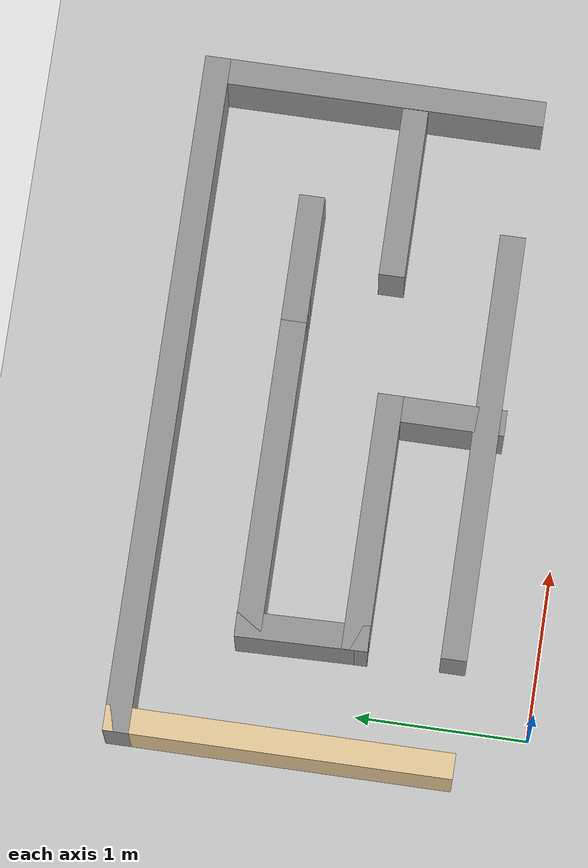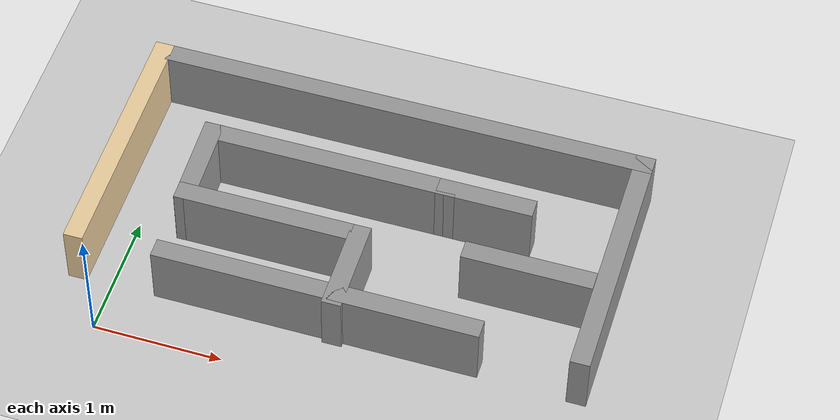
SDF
<sdf version="1.4">
  <world name="default">

    <scene>
      <ambient>0.4 0.4 0.4 1</ambient>
      <background>0.7 0.7 0.7 1</background>
      <shadows>true</shadows>
    </scene>

    <!-- A global light source -->
    <include>
      <uri>model://sun</uri>
    </include>

    <!-- A ground plane -->
    <include>
      <uri>model://ground_plane</uri>
    </include>

    <!-- My maze -->
    <include>
      <uri>model://my_maze1</uri>
      	<pose> 1.75 2 0 0 0 0</pose>
    </include>

    <physics type="ode">
      <real_time_update_rate>1000.0</real_time_update_rate>
      <max_step_size>0.001</max_step_size>
      <real_time_factor>1</real_time_factor>
      <ode>
        <solver>
          <type>quick</type>
          <iters>150</iters>
          <precon_iters>0</precon_iters>
          <sor>1.400000</sor>
          <use_dynamic_moi_rescaling>1</use_dynamic_moi_rescaling>
        </solver>
        <constraints>
          <cfm>0.00001</cfm>
          <erp>0.2</erp>
          <contact_max_correcting_vel>2000.000000</contact_max_correcting_vel>
          <contact_surface_layer>0.01000</contact_surface_layer>
        </constraints>
      </ode>
    </physics>
  </world>

</sdf>

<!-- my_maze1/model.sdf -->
<sdf version='1.7'>
  <model name='my_maze1'>
    <pose>-2.1 -1.6255 0 0 -0 0</pose>
    <link name='Wall_0'>
      <collision name='Wall_0_Collision'>
        <geometry>
          <box>
            <size>2 0.15 0.5</size>
          </box>
        </geometry>
        <pose>0 0 0.25 0 -0 0</pose>
      </collision>
      <visual name='Wall_0_Visual'>
        <pose>0 0 0.25 0 -0 0</pose>
        <geometry>
          <box>
            <size>2 0.15 0.5</size>
          </box>
        </geometry>
        <material>
          <script>
            <uri>file://media/materials/scripts/gazebo.material</uri>
            <name>Gazebo/Grey</name>
          </script>
          <ambient>0.921569 0.807843 0.615686 1</ambient>
        </material>
        <meta>
          <layer>0</layer>
        </meta>
      </visual>
      <pose>-2.025 -0.6035 0 0 -0 -1.5708</pose>
    </link>
    <link name='Wall_12'>
      <collision name='Wall_12_Collision'>
        <geometry>
          <box>
            <size>2 0.15 0.5</size>
          </box>
        </geometry>
        <pose>0 0 0.25 0 -0 0</pose>
      </collision>
      <visual name='Wall_12_Visual'>
        <pose>0 0 0.25 0 -0 0</pose>
        <geometry>
          <box>
            <size>2 0.15 0.5</size>
          </box>
        </geometry>
        <material>
          <script>
            <uri>file://media/materials/scripts/gazebo.material</uri>
            <name>Gazebo/Grey</name>
          </script>
          <ambient>1 1 1 1</ambient>
        </material>
        <meta>
          <layer>0</layer>
        </meta>
      </visual>
      <pose>-0.447 -0.337388 0 0 -0 -0.000122</pose>
    </link>
    <link name='Wall_15'>
      <collision name='Wall_15_Collision'>
        <geometry>
          <box>
            <size>1 0.15 0.5</size>
          </box>
        </geometry>
        <pose>0 0 0.25 0 -0 0</pose>
      </collision>
      <visual name='Wall_15_Visual'>
        <pose>0 0 0.25 0 -0 0</pose>
        <geometry>
          <box>
            <size>1 0.15 0.5</size>
          </box>
        </geometry>
        <material>
          <script>
            <uri>file://media/materials/scripts/gazebo.material</uri>
            <name>Gazebo/Grey</name>
          </script>
          <ambient>1 1 1 1</ambient>
        </material>
        <meta>
          <layer>0</layer>
        </meta>
      </visual>
      <pose>1.248 -0.8575 0 0 -0 0</pose>
    </link>
    <link name='Wall_17'>
      <collision name='Wall_17_Collision'>
        <geometry>
          <box>
            <size>0.763368 0.15 0.5</size>
          </box>
        </geometry>
        <pose>0 0 0.25 0 -0 0</pose>
      </collision>
      <visual name='Wall_17_Visual'>
        <pose>0 0 0.25 0 -0 0</pose>
        <geometry>
          <box>
            <size>0.763368 0.15 0.5</size>
          </box>
        </geometry>
        <material>
          <script>
            <uri>file://media/materials/scripts/gazebo.material</uri>
            <name>Gazebo/Grey</name>
          </script>
          <ambient>1 1 1 1</ambient>
        </material>
        <meta>
          <layer>0</layer>
        </meta>
      </visual>
      <pose>-1.37861 -0.643888 0 0 -0 1.59236</pose>
    </link>
    <link name='Wall_19'>
      <collision name='Wall_19_Collision'>
        <geometry>
          <box>
            <size>0.75 0.15 0.5</size>
          </box>
        </geometry>
        <pose>0 0 0.25 0 -0 0</pose>
      </collision>
      <visual name='Wall_19_Visual'>
        <pose>0 0 0.25 0 -0 0</pose>
        <geometry>
          <box>
            <size>0.75 0.15 0.5</size>
          </box>
        </geometry>
        <material>
          <script>
            <uri>file://media/materials/scripts/gazebo.material</uri>
            <name>Gazebo/Grey</name>
          </script>
          <ambient>1 1 1 1</ambient>
        </material>
        <meta>
          <layer>0</layer>
        </meta>
      </visual>
      <pose>0.778 -0.3375 0 0 -0 0</pose>
    </link>
    <link name='Wall_3'>
      <collision name='Wall_3_Collision'>
        <geometry>
          <box>
            <size>4 0.15 0.5</size>
          </box>
        </geometry>
        <pose>0 0 0.25 0 -0 0</pose>
      </collision>
      <visual name='Wall_3_Visual'>
        <pose>0 0 0.25 0 -0 0</pose>
        <geometry>
          <box>
            <size>4 0.15 0.5</size>
          </box>
        </geometry>
        <material>
          <script>
            <uri>file://media/materials/scripts/gazebo.material</uri>
            <name>Gazebo/Grey</name>
          </script>
          <ambient>1 1 1 1</ambient>
        </material>
        <meta>
          <layer>0</layer>
        </meta>
      </visual>
      <pose>-0.1 0.3215 0 0 -0 0</pose>
    </link>
    <link name='Wall_4'>
      <collision name='Wall_4_Collision'>
        <geometry>
          <box>
            <size>2 0.15 0.5</size>
          </box>
        </geometry>
        <pose>0 0 0.25 0 -0 0</pose>
      </collision>
      <visual name='Wall_4_Visual'>
        <pose>0 0 0.25 0 -0 0</pose>
        <geometry>
          <box>
            <size>2 0.15 0.5</size>
          </box>
        </geometry>
        <material>
          <script>
            <uri>file://media/materials/scripts/gazebo.material</uri>
            <name>Gazebo/Grey</name>
          </script>
          <ambient>1 1 1 1</ambient>
        </material>
        <meta>
          <layer>0</layer>
        </meta>
      </visual>
      <pose>1.825 -0.6035 0 0 -0 -1.5708</pose>
    </link>
    <link name='Wall_6'>
      <collision name='Wall_6_Collision'>
        <geometry>
          <box>
            <size>2.5 0.15 0.5</size>
          </box>
        </geometry>
        <pose>0 0 0.25 0 -0 0</pose>
      </collision>
      <visual name='Wall_6_Visual'>
        <pose>0 0 0.25 0 -0 0</pose>
        <geometry>
          <box>
            <size>2.5 0.15 0.5</size>
          </box>
        </geometry>
        <material>
          <script>
            <uri>file://media/materials/scripts/gazebo.material</uri>
            <name>Gazebo/Grey</name>
          </script>
          <ambient>1 1 1 1</ambient>
        </material>
        <meta>
          <layer>0</layer>
        </meta>
      </visual>
      <pose>-0.171 -1.5185 0 0 -0 0</pose>
    </link>
    <link name='Wall_8'>
      <collision name='Wall_8_Collision'>
        <geometry>
          <box>
            <size>1.5 0.15 0.5</size>
          </box>
        </geometry>
        <pose>0 0 0.25 0 -0 0</pose>
      </collision>
      <visual name='Wall_8_Visual'>
        <pose>0 0 0.25 0 -0 0</pose>
        <geometry>
          <box>
            <size>1.5 0.15 0.5</size>
          </box>
        </geometry>
        <material>
          <script>
            <uri>file://media/materials/scripts/gazebo.material</uri>
            <name>Gazebo/Grey</name>
          </script>
          <ambient>1 1 1 1</ambient>
        </material>
        <meta>
          <layer>0</layer>
        </meta>
      </visual>
      <pose>-0.697 -0.9505 0 0 -0 0</pose>
    </link>
    <link name='Wall_9'>
      <collision name='Wall_9_Collision'>
        <geometry>
          <box>
            <size>0.75 0.15 0.5</size>
          </box>
        </geometry>
        <pose>0 0 0.25 0 -0 0</pose>
      </collision>
      <visual name='Wall_9_Visual'>
        <pose>0 0 0.25 0 -0 0</pose>
        <geometry>
          <box>
            <size>0.75 0.15 0.5</size>
          </box>
        </geometry>
        <material>
          <script>
            <uri>file://media/materials/scripts/gazebo.material</uri>
            <name>Gazebo/Grey</name>
          </script>
          <ambient>1 1 1 1</ambient>
        </material>
        <meta>
          <layer>0</layer>
        </meta>
      </visual>
      <pose>-0.022 -1.2505 0 0 -0 -1.5708</pose>
    </link>
    <static>1</static>
  </model>
</sdf>
